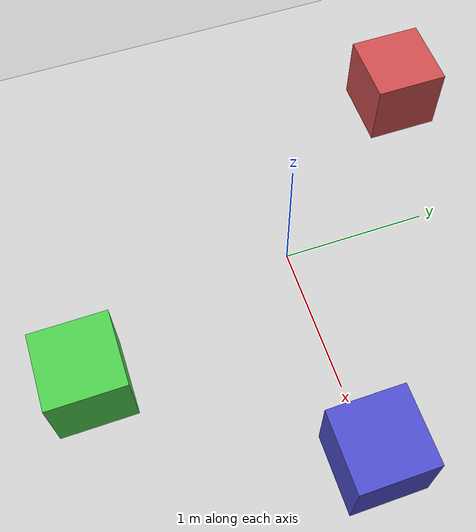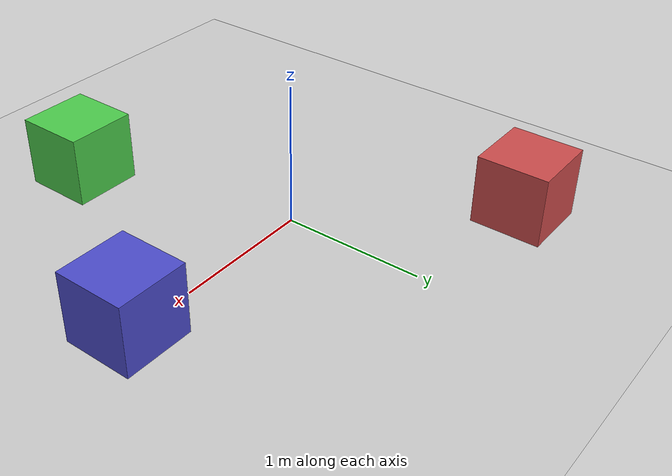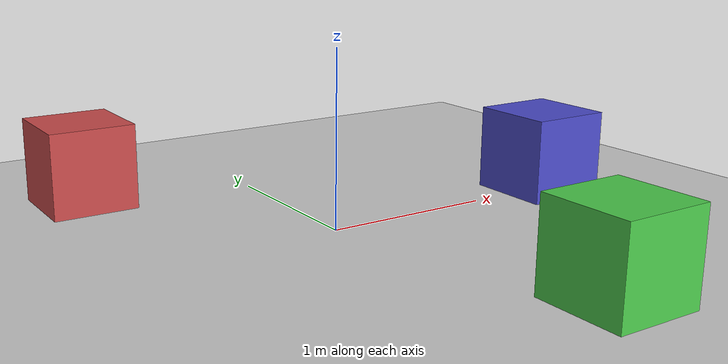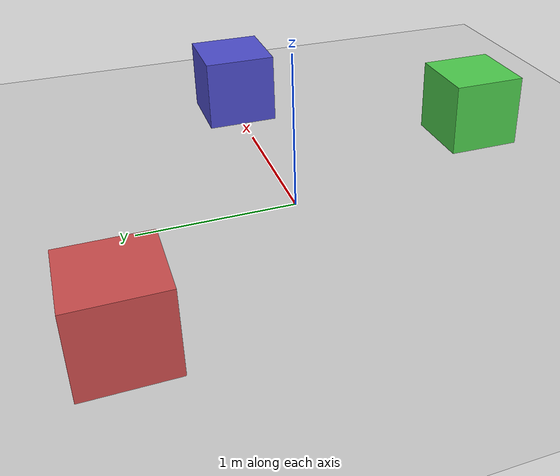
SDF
<?xml version="1.0"?>
<sdf version="1.9">
  <world name="x3_world">

    <!-- ── Required Ignition Fortress systems ────────────────────────────── -->
    <!-- Physics engine -->
    <plugin filename="ignition-gazebo-physics-system"
            name="ignition::gazebo::systems::Physics"/>
    <!-- Allows models to be created/deleted at runtime (for robot spawn) -->
    <plugin filename="ignition-gazebo-user-commands-system"
            name="ignition::gazebo::systems::UserCommands"/>
    <!-- Publishes scene state for the Ignition GUI client -->
    <plugin filename="ignition-gazebo-scene-broadcaster-system"
            name="ignition::gazebo::systems::SceneBroadcaster"/>
    <!-- Sensor infrastructure: drives all sensors declared in robot model -->
    <plugin filename="ignition-gazebo-sensors-system"
            name="ignition::gazebo::systems::Sensors">
      <render_engine>ogre2</render_engine>
    </plugin>
    <!-- IMU system (required alongside Sensors for IMU sensors) -->
    <plugin filename="ignition-gazebo-imu-system"
            name="ignition::gazebo::systems::Imu"/>

    <!-- ── Lighting ───────────────────────────────────────────────────────── -->
    <light type="directional" name="sun">
      <cast_shadows>true</cast_shadows>
      <pose>0 0 10 0 0 0</pose>
      <diffuse>0.8 0.8 0.8 1</diffuse>
      <specular>0.2 0.2 0.2 1</specular>
      <attenuation>
        <range>1000</range>
        <constant>0.9</constant>
        <linear>0.01</linear>
        <quadratic>0.001</quadratic>
      </attenuation>
      <direction>-0.5 0.1 -0.9</direction>
    </light>

    <!-- ── Ground plane ──────────────────────────────────────────────────── -->
    <model name="ground_plane">
      <static>true</static>
      <link name="link">
        <collision name="collision">
          <geometry>
            <plane><normal>0 0 1</normal><size>100 100</size></plane>
          </geometry>
        </collision>
        <visual name="visual">
          <geometry>
            <plane><normal>0 0 1</normal><size>100 100</size></plane>
          </geometry>
          <material>
            <ambient>0.8 0.8 0.8 1</ambient>
            <diffuse>0.8 0.8 0.8 1</diffuse>
            <specular>0.8 0.8 0.8 1</specular>
          </material>
        </visual>
      </link>
    </model>

    <!-- ── Physics: real-time factor 1.0, step 1 ms ─────────────────────── -->
    <physics name="1ms" type="ignored">
      <max_step_size>0.001</max_step_size>
      <real_time_factor>1.0</real_time_factor>
      <real_time_update_rate>1000</real_time_update_rate>
    </physics>

    <!-- ── Obstacles to test navigation ──────────────────────────────────── -->
    <model name="box1">
      <static>true</static>
      <pose>1.5 0.0 0.25 0 0 0</pose>
      <link name="link">
        <collision name="collision">
          <geometry><box><size>0.5 0.5 0.5</size></box></geometry>
        </collision>
        <visual name="visual">
          <geometry><box><size>0.5 0.5 0.5</size></box></geometry>
          <material>
            <ambient>0.3 0.3 0.8 1</ambient>
            <diffuse>0.3 0.3 0.8 1</diffuse>
          </material>
        </visual>
      </link>
    </model>

    <model name="box2">
      <static>true</static>
      <pose>-1.0 1.2 0.25 0 0 0</pose>
      <link name="link">
        <collision name="collision">
          <geometry><box><size>0.5 0.5 0.5</size></box></geometry>
        </collision>
        <visual name="visual">
          <geometry><box><size>0.5 0.5 0.5</size></box></geometry>
          <material>
            <ambient>0.8 0.3 0.3 1</ambient>
            <diffuse>0.8 0.3 0.3 1</diffuse>
          </material>
        </visual>
      </link>
    </model>

    <model name="box3">
      <static>true</static>
      <pose>0.5 -1.5 0.25 0 0 0</pose>
      <link name="link">
        <collision name="collision">
          <geometry><box><size>0.5 0.5 0.5</size></box></geometry>
        </collision>
        <visual name="visual">
          <geometry><box><size>0.5 0.5 0.5</size></box></geometry>
          <material>
            <ambient>0.3 0.8 0.3 1</ambient>
            <diffuse>0.3 0.8 0.3 1</diffuse>
          </material>
        </visual>
      </link>
    </model>

  </world>
</sdf>
